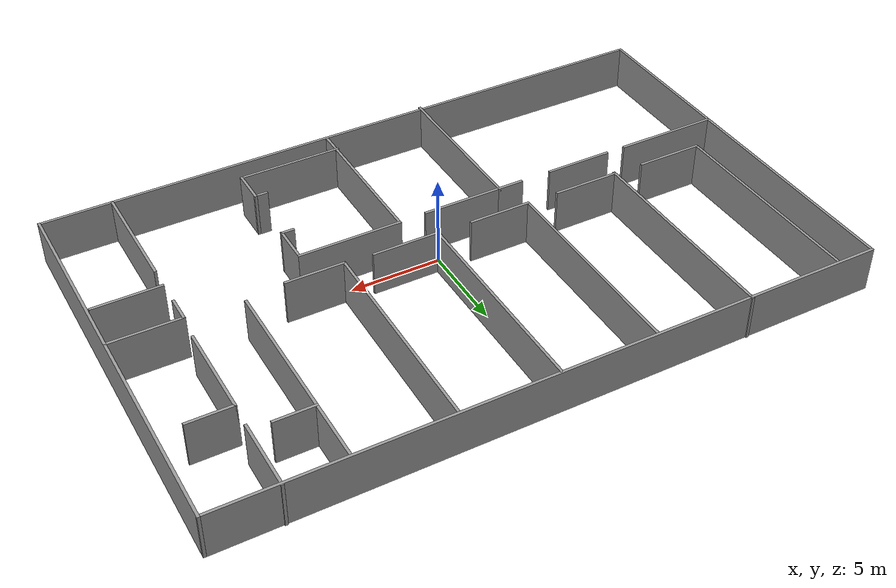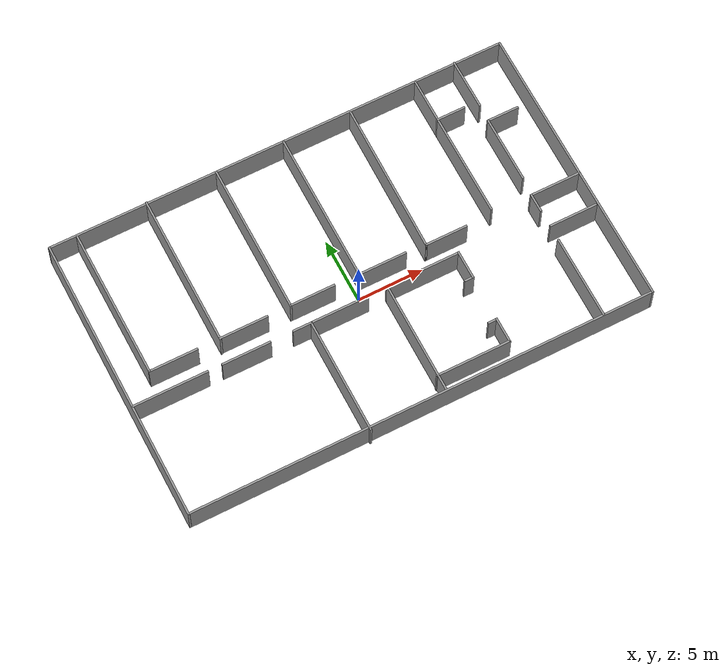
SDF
<?xml version='1.0'?>
<sdf version='1.6'>
  <model name='5floor'>
    <pose frame=''>-0.008247 1.28164 0 0 -0 0</pose>
    <link name='Wall_10'>
      <collision name='Wall_10_Collision'>
        <geometry>
          <box>
            <size>11.6232 0.15 2.5</size>
          </box>
        </geometry>
        <pose frame=''>0 0 1.25 0 -0 0</pose>
      </collision>
      <visual name='Wall_10_Visual'>
        <pose frame=''>0 0 1.25 0 -0 0</pose>
        <geometry>
          <box>
            <size>11.6232 0.15 2.5</size>
          </box>
        </geometry>
        <material>
          <script>
            <uri>file://media/materials/scripts/gazebo.material</uri>
            <name>Gazebo/Grey</name>
          </script>
          <ambient>1 1 1 1</ambient>
        </material>
        <meta>
          <layer>0</layer>
        </meta>
      </visual>
      <pose frame=''>-15.6773 5.30272 0 0 -0 -1.56543</pose>
    </link>
    <link name='Wall_11'>
      <collision name='Wall_11_Collision'>
        <geometry>
          <box>
            <size>3.75 0.15 2.5</size>
          </box>
        </geometry>
        <pose frame=''>0 0 1.25 0 -0 0</pose>
      </collision>
      <visual name='Wall_11_Visual'>
        <pose frame=''>0 0 1.25 0 -0 0</pose>
        <geometry>
          <box>
            <size>3.75 0.15 2.5</size>
          </box>
        </geometry>
        <material>
          <script>
            <uri>file://media/materials/scripts/gazebo.material</uri>
            <name>Gazebo/Grey</name>
          </script>
          <ambient>1 1 1 1</ambient>
        </material>
        <meta>
          <layer>0</layer>
        </meta>
      </visual>
      <pose frame=''>-13.8465 -0.495337 0 0 -0 0</pose>
    </link>
    <link name='Wall_13'>
      <collision name='Wall_13_Collision'>
        <geometry>
          <box>
            <size>11.8731 0.15 2.5</size>
          </box>
        </geometry>
        <pose frame=''>0 0 1.25 0 -0 0</pose>
      </collision>
      <visual name='Wall_13_Visual'>
        <pose frame=''>0 0 1.25 0 -0 0</pose>
        <geometry>
          <box>
            <size>11.8731 0.15 2.5</size>
          </box>
        </geometry>
        <material>
          <script>
            <uri>file://media/materials/scripts/gazebo.material</uri>
            <name>Gazebo/Grey</name>
          </script>
          <ambient>1 1 1 1</ambient>
        </material>
        <meta>
          <layer>0</layer>
        </meta>
      </visual>
      <pose frame=''>-10.2936 5.30077 0 0 -0 -1.5708</pose>
    </link>
    <link name='Wall_14'>
      <collision name='Wall_14_Collision'>
        <geometry>
          <box>
            <size>3.75 0.15 2.5</size>
          </box>
        </geometry>
        <pose frame=''>0 0 1.25 0 -0 0</pose>
      </collision>
      <visual name='Wall_14_Visual'>
        <pose frame=''>0 0 1.25 0 -0 0</pose>
        <geometry>
          <box>
            <size>3.75 0.15 2.5</size>
          </box>
        </geometry>
        <material>
          <script>
            <uri>file://media/materials/scripts/gazebo.material</uri>
            <name>Gazebo/Grey</name>
          </script>
          <ambient>1 1 1 1</ambient>
        </material>
        <meta>
          <layer>0</layer>
        </meta>
      </visual>
      <pose frame=''>-8.4936 -0.499225 0 0 -0 0</pose>
    </link>
    <link name='Wall_16'>
      <collision name='Wall_16_Collision'>
        <geometry>
          <box>
            <size>11.75 0.15 2.5</size>
          </box>
        </geometry>
        <pose frame=''>0 0 1.25 0 -0 0</pose>
      </collision>
      <visual name='Wall_16_Visual'>
        <pose frame=''>0 0 1.25 0 -0 0</pose>
        <geometry>
          <box>
            <size>11.75 0.15 2.5</size>
          </box>
        </geometry>
        <material>
          <script>
            <uri>file://media/materials/scripts/gazebo.material</uri>
            <name>Gazebo/Grey</name>
          </script>
          <ambient>1 1 1 1</ambient>
        </material>
        <meta>
          <layer>0</layer>
        </meta>
      </visual>
      <pose frame=''>-4.87915 5.30077 0 0 -0 -1.5708</pose>
    </link>
    <link name='Wall_17'>
      <collision name='Wall_17_Collision'>
        <geometry>
          <box>
            <size>3.5 0.15 2.5</size>
          </box>
        </geometry>
        <pose frame=''>0 0 1.25 0 -0 0</pose>
      </collision>
      <visual name='Wall_17_Visual'>
        <pose frame=''>0 0 1.25 0 -0 0</pose>
        <geometry>
          <box>
            <size>3.5 0.15 2.5</size>
          </box>
        </geometry>
        <material>
          <script>
            <uri>file://media/materials/scripts/gazebo.material</uri>
            <name>Gazebo/Grey</name>
          </script>
          <ambient>1 1 1 1</ambient>
        </material>
        <meta>
          <layer>0</layer>
        </meta>
      </visual>
      <pose frame=''>-3.20415 -0.499225 0 0 -0 0</pose>
    </link>
    <link name='Wall_19'>
      <collision name='Wall_19_Collision'>
        <geometry>
          <box>
            <size>11.75 0.15 2.5</size>
          </box>
        </geometry>
        <pose frame=''>0 0 1.25 0 -0 0</pose>
      </collision>
      <visual name='Wall_19_Visual'>
        <pose frame=''>0 0 1.25 0 -0 0</pose>
        <geometry>
          <box>
            <size>11.75 0.15 2.5</size>
          </box>
        </geometry>
        <material>
          <script>
            <uri>file://media/materials/scripts/gazebo.material</uri>
            <name>Gazebo/Grey</name>
          </script>
          <ambient>1 1 1 1</ambient>
        </material>
        <meta>
          <layer>0</layer>
        </meta>
      </visual>
      <pose frame=''>0.412251 5.23925 0 0 -0 -1.5708</pose>
    </link>
    <link name='Wall_20'>
      <collision name='Wall_20_Collision'>
        <geometry>
          <box>
            <size>3.75 0.15 2.5</size>
          </box>
        </geometry>
        <pose frame=''>0 0 1.25 0 -0 0</pose>
      </collision>
      <visual name='Wall_20_Visual'>
        <pose frame=''>0 0 1.25 0 -0 0</pose>
        <geometry>
          <box>
            <size>3.75 0.15 2.5</size>
          </box>
        </geometry>
        <material>
          <script>
            <uri>file://media/materials/scripts/gazebo.material</uri>
            <name>Gazebo/Grey</name>
          </script>
          <ambient>1 1 1 1</ambient>
        </material>
        <meta>
          <layer>0</layer>
        </meta>
      </visual>
      <pose frame=''>2.21225 -0.560753 0 0 -0 0</pose>
    </link>
    <link name='Wall_22'>
      <collision name='Wall_22_Collision'>
        <geometry>
          <box>
            <size>11.8083 0.15 2.5</size>
          </box>
        </geometry>
        <pose frame=''>0 0 1.25 0 -0 0</pose>
      </collision>
      <visual name='Wall_22_Visual'>
        <pose frame=''>0 0 1.25 0 -0 0</pose>
        <geometry>
          <box>
            <size>11.8083 0.15 2.5</size>
          </box>
        </geometry>
        <material>
          <script>
            <uri>file://media/materials/scripts/gazebo.material</uri>
            <name>Gazebo/Grey</name>
          </script>
          <ambient>1 1 1 1</ambient>
        </material>
        <meta>
          <layer>0</layer>
        </meta>
      </visual>
      <pose frame=''>5.64212 5.1489 0 0 -0 -1.58135</pose>
    </link>
    <link name='Wall_23'>
      <collision name='Wall_23_Collision'>
        <geometry>
          <box>
            <size>3.25 0.15 2.5</size>
          </box>
        </geometry>
        <pose frame=''>0 0 1.25 0 -0 0</pose>
      </collision>
      <visual name='Wall_23_Visual'>
        <pose frame=''>0 0 1.25 0 -0 0</pose>
        <geometry>
          <box>
            <size>3.25 0.15 2.5</size>
          </box>
        </geometry>
        <material>
          <script>
            <uri>file://media/materials/scripts/gazebo.material</uri>
            <name>Gazebo/Grey</name>
          </script>
          <ambient>1 1 1 1</ambient>
        </material>
        <meta>
          <layer>0</layer>
        </meta>
      </visual>
      <pose frame=''>7.19212 -0.679921 0 0 -0 0</pose>
    </link>
    <link name='Wall_25'>
      <collision name='Wall_25_Collision'>
        <geometry>
          <box>
            <size>11.5 0.15 2.5</size>
          </box>
        </geometry>
        <pose frame=''>0 0 1.25 0 -0 0</pose>
      </collision>
      <visual name='Wall_25_Visual'>
        <pose frame=''>0 0 1.25 0 -0 0</pose>
        <geometry>
          <box>
            <size>11.5 0.15 2.5</size>
          </box>
        </geometry>
        <material>
          <script>
            <uri>file://media/materials/scripts/gazebo.material</uri>
            <name>Gazebo/Grey</name>
          </script>
          <ambient>1 1 1 1</ambient>
        </material>
        <meta>
          <layer>0</layer>
        </meta>
      </visual>
      <pose frame=''>10.9335 5.36425 0 0 -0 -1.5708</pose>
    </link>
    <link name='Wall_27'>
      <collision name='Wall_27_Collision'>
        <geometry>
          <box>
            <size>5.75 0.15 2.5</size>
          </box>
        </geometry>
        <pose frame=''>0 0 1.25 0 -0 0</pose>
      </collision>
      <visual name='Wall_27_Visual'>
        <pose frame=''>0 0 1.25 0 -0 0</pose>
        <geometry>
          <box>
            <size>5.75 0.15 2.5</size>
          </box>
        </geometry>
        <material>
          <script>
            <uri>file://media/materials/scripts/gazebo.material</uri>
            <name>Gazebo/Grey</name>
          </script>
          <ambient>1 1 1 1</ambient>
        </material>
        <meta>
          <layer>0</layer>
        </meta>
      </visual>
      <pose frame=''>-14.9385 -2.3123 0 0 -0 0</pose>
    </link>
    <link name='Wall_29'>
      <collision name='Wall_29_Collision'>
        <geometry>
          <box>
            <size>3.75 0.15 2.5</size>
          </box>
        </geometry>
        <pose frame=''>0 0 1.25 0 -0 0</pose>
      </collision>
      <visual name='Wall_29_Visual'>
        <pose frame=''>0 0 1.25 0 -0 0</pose>
        <geometry>
          <box>
            <size>3.75 0.15 2.5</size>
          </box>
        </geometry>
        <material>
          <script>
            <uri>file://media/materials/scripts/gazebo.material</uri>
            <name>Gazebo/Grey</name>
          </script>
          <ambient>1 1 1 1</ambient>
        </material>
        <meta>
          <layer>0</layer>
        </meta>
      </visual>
      <pose frame=''>-9.17041 -2.3123 0 0 -0 0</pose>
    </link>
    <link name='Wall_31'>
      <collision name='Wall_31_Collision'>
        <geometry>
          <box>
            <size>1.5 0.15 2.5</size>
          </box>
        </geometry>
        <pose frame=''>0 0 1.25 0 -0 0</pose>
      </collision>
      <visual name='Wall_31_Visual'>
        <pose frame=''>0 0 1.25 0 -0 0</pose>
        <geometry>
          <box>
            <size>1.5 0.15 2.5</size>
          </box>
        </geometry>
        <material>
          <script>
            <uri>file://media/materials/scripts/gazebo.material</uri>
            <name>Gazebo/Grey</name>
          </script>
          <ambient>1 1 1 1</ambient>
        </material>
        <meta>
          <layer>0</layer>
        </meta>
      </visual>
      <pose frame=''>-4.88095 -2.3123 0 0 -0 0</pose>
    </link>
    <link name='Wall_32'>
      <collision name='Wall_32_Collision'>
        <geometry>
          <box>
            <size>9 0.15 2.5</size>
          </box>
        </geometry>
        <pose frame=''>0 0 1.25 0 -0 0</pose>
      </collision>
      <visual name='Wall_32_Visual'>
        <pose frame=''>0 0 1.25 0 -0 0</pose>
        <geometry>
          <box>
            <size>9 0.15 2.5</size>
          </box>
        </geometry>
        <material>
          <script>
            <uri>file://media/materials/scripts/gazebo.material</uri>
            <name>Gazebo/Grey</name>
          </script>
          <ambient>1 1 1 1</ambient>
        </material>
        <meta>
          <layer>0</layer>
        </meta>
      </visual>
      <pose frame=''>-4.20595 -6.7373 0 0 -0 -1.5708</pose>
    </link>
    <link name='Wall_34'>
      <collision name='Wall_34_Collision'>
        <geometry>
          <box>
            <size>4.5 0.15 2.5</size>
          </box>
        </geometry>
        <pose frame=''>0 0 1.25 0 -0 0</pose>
      </collision>
      <visual name='Wall_34_Visual'>
        <pose frame=''>0 0 1.25 0 -0 0</pose>
        <geometry>
          <box>
            <size>4.5 0.15 2.5</size>
          </box>
        </geometry>
        <material>
          <script>
            <uri>file://media/materials/scripts/gazebo.material</uri>
            <name>Gazebo/Grey</name>
          </script>
          <ambient>1 1 1 1</ambient>
        </material>
        <meta>
          <layer>0</layer>
        </meta>
      </visual>
      <pose frame=''>-2.03095 -2.3123 0 0 -0 0</pose>
    </link>
    <link name='Wall_36'>
      <collision name='Wall_36_Collision'>
        <geometry>
          <box>
            <size>8.75 0.15 2.5</size>
          </box>
        </geometry>
        <pose frame=''>0 0 1.25 0 -0 0</pose>
      </collision>
      <visual name='Wall_36_Visual'>
        <pose frame=''>0 0 1.25 0 -0 0</pose>
        <geometry>
          <box>
            <size>8.75 0.15 2.5</size>
          </box>
        </geometry>
        <material>
          <script>
            <uri>file://media/materials/scripts/gazebo.material</uri>
            <name>Gazebo/Grey</name>
          </script>
          <ambient>1 1 1 1</ambient>
        </material>
        <meta>
          <layer>0</layer>
        </meta>
      </visual>
      <pose frame=''>1.70434 -6.55077 0 0 -0 -1.5708</pose>
    </link>
    <link name='Wall_38'>
      <collision name='Wall_38_Collision'>
        <geometry>
          <box>
            <size>5.75 0.15 2.5</size>
          </box>
        </geometry>
        <pose frame=''>0 0 1.25 0 -0 0</pose>
      </collision>
      <visual name='Wall_38_Visual'>
        <pose frame=''>0 0 1.25 0 -0 0</pose>
        <geometry>
          <box>
            <size>5.75 0.15 2.5</size>
          </box>
        </geometry>
        <material>
          <script>
            <uri>file://media/materials/scripts/gazebo.material</uri>
            <name>Gazebo/Grey</name>
          </script>
          <ambient>1 1 1 1</ambient>
        </material>
        <meta>
          <layer>0</layer>
        </meta>
      </visual>
      <pose frame=''>4.50434 -2.25077 0 0 -0 0</pose>
    </link>
    <link name='Wall_39'>
      <collision name='Wall_39_Collision'>
        <geometry>
          <box>
            <size>2.25 0.15 2.5</size>
          </box>
        </geometry>
        <pose frame=''>0 0 1.25 0 -0 0</pose>
      </collision>
      <visual name='Wall_39_Visual'>
        <pose frame=''>0 0 1.25 0 -0 0</pose>
        <geometry>
          <box>
            <size>2.25 0.15 2.5</size>
          </box>
        </geometry>
        <material>
          <script>
            <uri>file://media/materials/scripts/gazebo.material</uri>
            <name>Gazebo/Grey</name>
          </script>
          <ambient>1 1 1 1</ambient>
        </material>
        <meta>
          <layer>0</layer>
        </meta>
      </visual>
      <pose frame=''>7.30434 -3.30077 0 0 -0 -1.5708</pose>
    </link>
    <link name='Wall_40'>
      <collision name='Wall_40_Collision'>
        <geometry>
          <box>
            <size>0.75 0.15 2.5</size>
          </box>
        </geometry>
        <pose frame=''>0 0 1.25 0 -0 0</pose>
      </collision>
      <visual name='Wall_40_Visual'>
        <pose frame=''>0 0 1.25 0 -0 0</pose>
        <geometry>
          <box>
            <size>0.75 0.15 2.5</size>
          </box>
        </geometry>
        <material>
          <script>
            <uri>file://media/materials/scripts/gazebo.material</uri>
            <name>Gazebo/Grey</name>
          </script>
          <ambient>1 1 1 1</ambient>
        </material>
        <meta>
          <layer>0</layer>
        </meta>
      </visual>
      <pose frame=''>7.00434 -4.35077 0 0 -0 3.14159</pose>
    </link>
    <link name='Wall_42'>
      <collision name='Wall_42_Collision'>
        <geometry>
          <box>
            <size>5.75 0.15 2.5</size>
          </box>
        </geometry>
        <pose frame=''>0 0 1.25 0 -0 0</pose>
      </collision>
      <visual name='Wall_42_Visual'>
        <pose frame=''>0 0 1.25 0 -0 0</pose>
        <geometry>
          <box>
            <size>5.75 0.15 2.5</size>
          </box>
        </geometry>
        <material>
          <script>
            <uri>file://media/materials/scripts/gazebo.material</uri>
            <name>Gazebo/Grey</name>
          </script>
          <ambient>1 1 1 1</ambient>
        </material>
        <meta>
          <layer>0</layer>
        </meta>
      </visual>
      <pose frame=''>4.44281 -9.75718 0 0 -0 0</pose>
    </link>
    <link name='Wall_43'>
      <collision name='Wall_43_Collision'>
        <geometry>
          <box>
            <size>2 0.15 2.5</size>
          </box>
        </geometry>
        <pose frame=''>0 0 1.25 0 -0 0</pose>
      </collision>
      <visual name='Wall_43_Visual'>
        <pose frame=''>0 0 1.25 0 -0 0</pose>
        <geometry>
          <box>
            <size>2 0.15 2.5</size>
          </box>
        </geometry>
        <material>
          <script>
            <uri>file://media/materials/scripts/gazebo.material</uri>
            <name>Gazebo/Grey</name>
          </script>
          <ambient>1 1 1 1</ambient>
        </material>
        <meta>
          <layer>0</layer>
        </meta>
      </visual>
      <pose frame=''>7.24281 -8.83217 0 0 -0 1.5708</pose>
    </link>
    <link name='Wall_44'>
      <collision name='Wall_44_Collision'>
        <geometry>
          <box>
            <size>0.75 0.15 2.5</size>
          </box>
        </geometry>
        <pose frame=''>0 0 1.25 0 -0 0</pose>
      </collision>
      <visual name='Wall_44_Visual'>
        <pose frame=''>0 0 1.25 0 -0 0</pose>
        <geometry>
          <box>
            <size>0.75 0.15 2.5</size>
          </box>
        </geometry>
        <material>
          <script>
            <uri>file://media/materials/scripts/gazebo.material</uri>
            <name>Gazebo/Grey</name>
          </script>
          <ambient>1 1 1 1</ambient>
        </material>
        <meta>
          <layer>0</layer>
        </meta>
      </visual>
      <pose frame=''>6.94281 -7.90718 0 0 -0 3.14159</pose>
    </link>
    <link name='Wall_46'>
      <collision name='Wall_46_Collision'>
        <geometry>
          <box>
            <size>2.25 0.15 2.5</size>
          </box>
        </geometry>
        <pose frame=''>0 0 1.25 0 -0 0</pose>
      </collision>
      <visual name='Wall_46_Visual'>
        <pose frame=''>0 0 1.25 0 -0 0</pose>
        <geometry>
          <box>
            <size>2.25 0.15 2.5</size>
          </box>
        </geometry>
        <material>
          <script>
            <uri>file://media/materials/scripts/gazebo.material</uri>
            <name>Gazebo/Grey</name>
          </script>
          <ambient>1 1 1 1</ambient>
        </material>
        <meta>
          <layer>0</layer>
        </meta>
      </visual>
      <pose frame=''>11.9835 7.65521 0 0 -0 0</pose>
    </link>
    <link name='Wall_48'>
      <collision name='Wall_48_Collision'>
        <geometry>
          <box>
            <size>4 0.15 2.5</size>
          </box>
        </geometry>
        <pose frame=''>0 0 1.25 0 -0 0</pose>
      </collision>
      <visual name='Wall_48_Visual'>
        <pose frame=''>0 0 1.25 0 -0 0</pose>
        <geometry>
          <box>
            <size>4 0.15 2.5</size>
          </box>
        </geometry>
        <material>
          <script>
            <uri>file://media/materials/scripts/gazebo.material</uri>
            <name>Gazebo/Grey</name>
          </script>
          <ambient>1 1 1 1</ambient>
        </material>
        <meta>
          <layer>0</layer>
        </meta>
      </visual>
      <pose frame=''>14.133 9.2373 0 0 -0 -1.5708</pose>
    </link>
    <link name='Wall_5'>
      <collision name='Wall_5_Collision'>
        <geometry>
          <box>
            <size>22.25 0.15 2.5</size>
          </box>
        </geometry>
        <pose frame=''>0 0 1.25 0 -0 0</pose>
      </collision>
      <visual name='Wall_5_Visual'>
        <pose frame=''>0 0 1.25 0 -0 0</pose>
        <geometry>
          <box>
            <size>22.25 0.15 2.5</size>
          </box>
        </geometry>
        <material>
          <script>
            <uri>file://media/materials/scripts/gazebo.material</uri>
            <name>Gazebo/Grey</name>
          </script>
          <ambient>1 1 1 1</ambient>
        </material>
        <meta>
          <layer>0</layer>
        </meta>
      </visual>
      <pose frame=''>-17.8 0.050775 0 0 -0 -1.5708</pose>
    </link>
    <link name='Wall_50'>
      <collision name='Wall_50_Collision'>
        <geometry>
          <box>
            <size>2.5 0.15 2.5</size>
          </box>
        </geometry>
        <pose frame=''>0 0 1.25 0 -0 0</pose>
      </collision>
      <visual name='Wall_50_Visual'>
        <pose frame=''>0 0 1.25 0 -0 0</pose>
        <geometry>
          <box>
            <size>2.5 0.15 2.5</size>
          </box>
        </geometry>
        <material>
          <script>
            <uri>file://media/materials/scripts/gazebo.material</uri>
            <name>Gazebo/Grey</name>
          </script>
          <ambient>1 1 1 1</ambient>
        </material>
        <meta>
          <layer>0</layer>
        </meta>
      </visual>
      <pose frame=''>15.2464 5.93243 0 0 -0 0</pose>
    </link>
    <link name='Wall_52'>
      <collision name='Wall_52_Collision'>
        <geometry>
          <box>
            <size>5.25 0.15 2.5</size>
          </box>
        </geometry>
        <pose frame=''>0 0 1.25 0 -0 0</pose>
      </collision>
      <visual name='Wall_52_Visual'>
        <pose frame=''>0 0 1.25 0 -0 0</pose>
        <geometry>
          <box>
            <size>5.25 0.15 2.5</size>
          </box>
        </geometry>
        <material>
          <script>
            <uri>file://media/materials/scripts/gazebo.material</uri>
            <name>Gazebo/Grey</name>
          </script>
          <ambient>1 1 1 1</ambient>
        </material>
        <meta>
          <layer>0</layer>
        </meta>
      </visual>
      <pose frame=''>14.0714 3.38243 0 0 -0 -1.5708</pose>
    </link>
    <link name='Wall_54'>
      <collision name='Wall_54_Collision'>
        <geometry>
          <box>
            <size>4 0.15 2.5</size>
          </box>
        </geometry>
        <pose frame=''>0 0 1.25 0 -0 0</pose>
      </collision>
      <visual name='Wall_54_Visual'>
        <pose frame=''>0 0 1.25 0 -0 0</pose>
        <geometry>
          <box>
            <size>4 0.15 2.5</size>
          </box>
        </geometry>
        <material>
          <script>
            <uri>file://media/materials/scripts/gazebo.material</uri>
            <name>Gazebo/Grey</name>
          </script>
          <ambient>1 1 1 1</ambient>
        </material>
        <meta>
          <layer>0</layer>
        </meta>
      </visual>
      <pose frame=''>15.8734 -0.65105 0 0 -0 0</pose>
    </link>
    <link name='Wall_56'>
      <collision name='Wall_56_Collision'>
        <geometry>
          <box>
            <size>1.5 0.15 2.5</size>
          </box>
        </geometry>
        <pose frame=''>0 0 1.25 0 -0 0</pose>
      </collision>
      <visual name='Wall_56_Visual'>
        <pose frame=''>0 0 1.25 0 -0 0</pose>
        <geometry>
          <box>
            <size>1.5 0.15 2.5</size>
          </box>
        </geometry>
        <material>
          <script>
            <uri>file://media/materials/scripts/gazebo.material</uri>
            <name>Gazebo/Grey</name>
          </script>
          <ambient>1 1 1 1</ambient>
        </material>
        <meta>
          <layer>0</layer>
        </meta>
      </visual>
      <pose frame=''>13.9484 -1.32605 0 0 -0 -1.5708</pose>
    </link>
    <link name='Wall_58'>
      <collision name='Wall_58_Collision'>
        <geometry>
          <box>
            <size>3.75 0.15 2.5</size>
          </box>
        </geometry>
        <pose frame=''>0 0 1.25 0 -0 0</pose>
      </collision>
      <visual name='Wall_58_Visual'>
        <pose frame=''>0 0 1.25 0 -0 0</pose>
        <geometry>
          <box>
            <size>3.75 0.15 2.5</size>
          </box>
        </geometry>
        <material>
          <script>
            <uri>file://media/materials/scripts/gazebo.material</uri>
            <name>Gazebo/Grey</name>
          </script>
          <ambient>1 1 1 1</ambient>
        </material>
        <meta>
          <layer>0</layer>
        </meta>
      </visual>
      <pose frame=''>15.8099 -3.35828 0 0 -0 0</pose>
    </link>
    <link name='Wall_6'>
      <collision name='Wall_6_Collision'>
        <geometry>
          <box>
            <size>35.75 0.15 2.5</size>
          </box>
        </geometry>
        <pose frame=''>0 0 1.25 0 -0 0</pose>
      </collision>
      <visual name='Wall_6_Visual'>
        <pose frame=''>0 0 1.25 0 -0 0</pose>
        <geometry>
          <box>
            <size>35.75 0.15 2.5</size>
          </box>
        </geometry>
        <material>
          <script>
            <uri>file://media/materials/scripts/gazebo.material</uri>
            <name>Gazebo/Grey</name>
          </script>
          <ambient>1 1 1 1</ambient>
        </material>
        <meta>
          <layer>0</layer>
        </meta>
      </visual>
      <pose frame=''>0 -10.9992 0 0 -0 0</pose>
    </link>
    <link name='Wall_60'>
      <collision name='Wall_60_Collision'>
        <geometry>
          <box>
            <size>6.5 0.15 2.5</size>
          </box>
        </geometry>
        <pose frame=''>0 0 1.25 0 -0 0</pose>
      </collision>
      <visual name='Wall_60_Visual'>
        <pose frame=''>0 0 1.25 0 -0 0</pose>
        <geometry>
          <box>
            <size>6.5 0.15 2.5</size>
          </box>
        </geometry>
        <material>
          <script>
            <uri>file://media/materials/scripts/gazebo.material</uri>
            <name>Gazebo/Grey</name>
          </script>
          <ambient>1 1 1 1</ambient>
        </material>
        <meta>
          <layer>0</layer>
        </meta>
      </visual>
      <pose frame=''>13.9484 -7.76383 0 0 -0 -1.5708</pose>
    </link>
    <link name='Wall_7'>
      <collision name='Wall_7_Collision'>
        <geometry>
          <box>
            <size>22.25 0.15 2.5</size>
          </box>
        </geometry>
        <pose frame=''>0 0 1.25 0 -0 0</pose>
      </collision>
      <visual name='Wall_7_Visual'>
        <pose frame=''>0 0 1.25 0 -0 0</pose>
        <geometry>
          <box>
            <size>22.25 0.15 2.5</size>
          </box>
        </geometry>
        <material>
          <script>
            <uri>file://media/materials/scripts/gazebo.material</uri>
            <name>Gazebo/Grey</name>
          </script>
          <ambient>1 1 1 1</ambient>
        </material>
        <meta>
          <layer>0</layer>
        </meta>
      </visual>
      <pose frame=''>17.8 0.050775 0 0 -0 1.5708</pose>
    </link>
    <link name='Wall_8'>
      <collision name='Wall_8_Collision'>
        <geometry>
          <box>
            <size>35.75 0.15 2.5</size>
          </box>
        </geometry>
        <pose frame=''>0 0 1.25 0 -0 0</pose>
      </collision>
      <visual name='Wall_8_Visual'>
        <pose frame=''>0 0 1.25 0 -0 0</pose>
        <geometry>
          <box>
            <size>35.75 0.15 2.5</size>
          </box>
        </geometry>
        <material>
          <script>
            <uri>file://media/materials/scripts/gazebo.material</uri>
            <name>Gazebo/Grey</name>
          </script>
          <ambient>1 1 1 1</ambient>
        </material>
        <meta>
          <layer>0</layer>
        </meta>
      </visual>
      <pose frame=''>0 11.1008 0 0 -0 3.14159</pose>
    </link>
    <static>1</static>
  </model>
</sdf>
